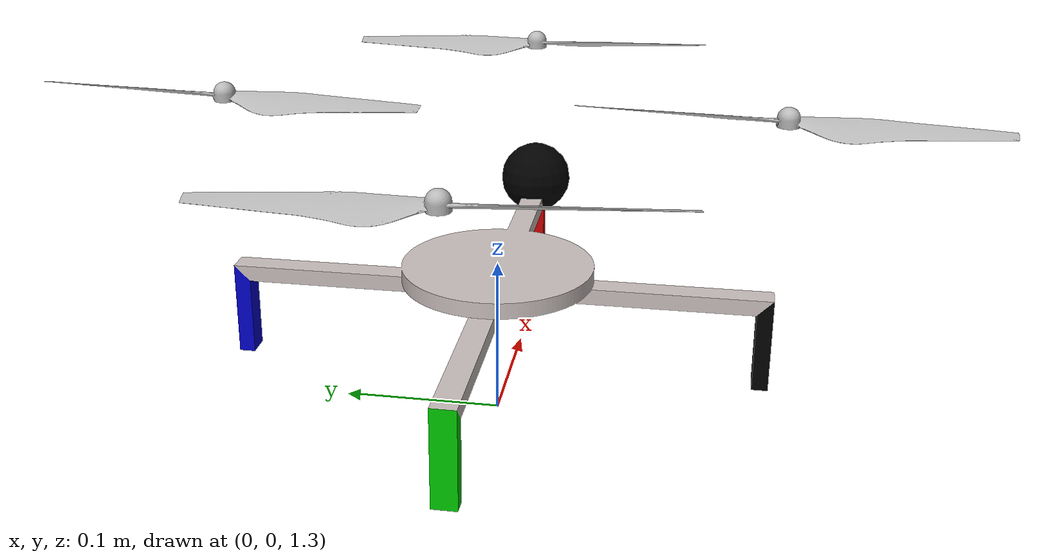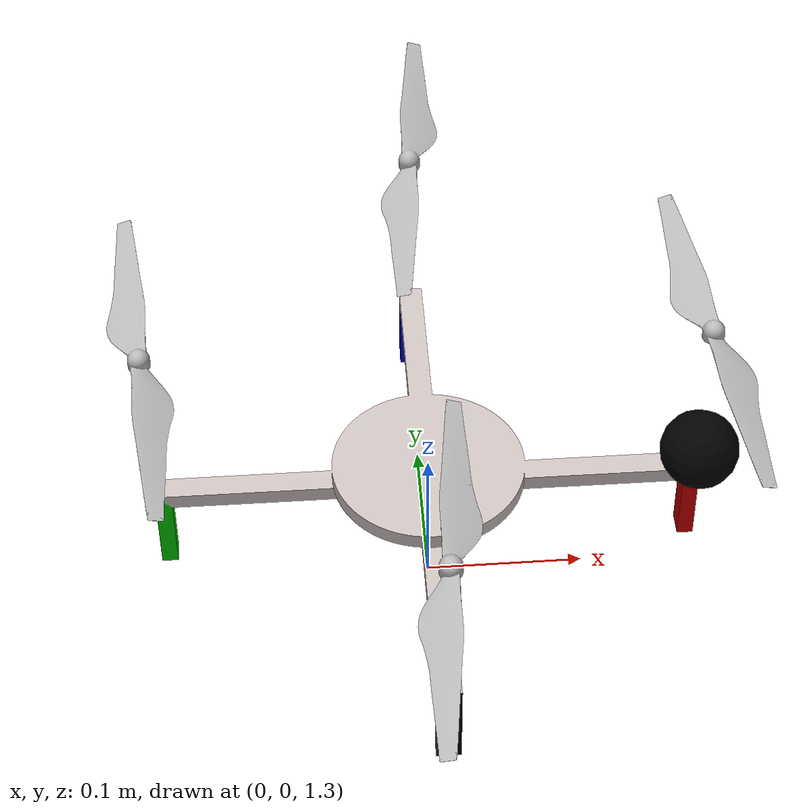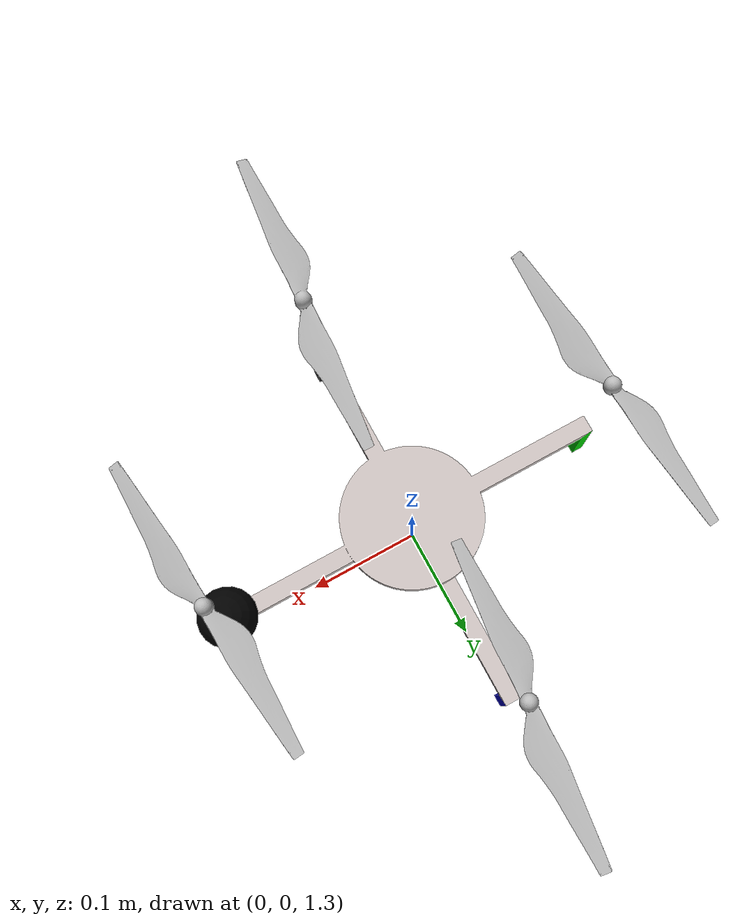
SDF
<sdf version='1.6'>
  <world name='default'>
  <include>
    <uri>model://ground_plane</uri>
  </include>
  <model name='quad01'>
    <static>1</static>
    <link name="quad01/base_link">
      <pose frame="">0 0 1.4 0 0 0</pose>
    </link>

    <joint name="quad01/led_joint" type="fixed">
      <parent>quad01/base_link</parent>
      <child>led_link</child>
    </joint>

    <link name="led_link">
    <pose>0.17 0 1.4 0 0 0</pose>
      <inertial>
        <mass>0.001</mass>  <!-- [kg] -->
        <inertia>
          <ixx>0</ixx>
          <ixy>0</ixy>
          <ixz>0</ixz>
          <iyy>0</iyy>
          <iyz>0</iyz>
          <izz>0</izz>
        </inertia>
      </inertial>
      <visual name="led">
        <geometry>
          <sphere>
            <radius>0.025</radius>
          </sphere>
        </geometry>
        <transparency>0</transparency>
        <material>
          <ambient>0 0 0 1</ambient>
          <diffuse>0 0 0 1</diffuse>
          <specular>0 0 0 1</specular>
          <emissive>0 1 0 1</emissive>
        </material>
      </visual>
      <light name="led" type="spot">
        <pose>0.05 0 0 0 1.57 0</pose>
        <attenuation>
          <range>10</range>
          <linear>1</linear>
          <constant>0.5</constant>
        </attenuation>
        <diffuse>0.5 1 1 1</diffuse>
        <specular>1 1 1 1</specular>
        <spot>
          <inner_angle>0.25</inner_angle>
          <outer_angle>0.3</outer_angle>
          <falloff>1</falloff>
        </spot>
        <direction>0 -1 0</direction>
      </light>
    </link>

    <plugin name='light_control' filename='libFlashLightPlugin.so'>
      <enable>true</enable>
      <light>
        <id>led_link/led</id>
        <duration>1</duration>
        <interval>0</interval>
        <color>0 1 0</color>
        <enable>true</enable>
      </light>
    </plugin>

    <joint name="quad01/base_joint" type="fixed">
      <parent>quad01/base_link</parent>
      <child>quad01/base_link_inertia</child>
    </joint>

    <link name="quad01/base_link_inertia">
      <inertial>
        <mass>0.68</mass>  <!-- [kg] -->
        <inertia>
          <ixx>0.007</ixx>
          <ixy>0</ixy>
          <ixz>0</ixz>
          <iyy>0.007</iyy>
          <iyz>0</iyz>
          <izz>0.012</izz>
        </inertia>
      </inertial>
      <visual name="base_link_visual">
        <pose>-0.17 -0.17 1.4 -1.57 0 0 </pose>
        <geometry>
          <mesh>
            <uri>model://rotors_description/meshes/bird01.dae</uri>
            <scale>0.001 0.001 0.001</scale>
          </mesh>
        </geometry>
      </visual>

      <collision name="baselink_col">
        <geometry>
          <box>
            <size>0.01 0.01 0.012</size>
          </box>
        </geometry>
      </collision>
    </link>

    <!-- attach multirotor_base_plugin to the base_link -->

      <plugin filename="librotors_gazebo_multirotor_base_plugin.so" name="multirotor_base_plugin">
        <linkName>quad01/base_link</linkName>
        <rotorVelocitySlowdownSim>10</rotorVelocitySlowdownSim>
      </plugin>

                            <!--Rotor joint and link-->
    <joint name="quad01/joint_rotor_0" type="velocity">
    <pose>0.17 0 1.5 0 0 0</pose>
      <parent>quad01/base_link</parent>
      <child>quad01/link_rotor_0</child>
    </joint>
    <link name="quad01/link_rotor_0">
      <inertial>
        <mass>0.009</mass>  <!-- [kg] -->
        <inertia>
          <ixx>0.000001</ixx>
          <ixy>0</ixy>
          <ixz>0</ixz>
          <iyy>0.00007</iyy>
          <iyz>0</iyz>
          <izz>0.00007</izz>
        </inertia>
      </inertial>
      <visual name="rotor_0_visual">
        <pose>0.17 0 1.5 0 0 0</pose>
        <geometry>
          <mesh>
            <uri>model://rotors_description/meshes/propeller_cw.dae</uri>
            <scale>0.1 0.1 0.1</scale>
          </mesh><!-- The propeller meshes have a radius of 1m -->
        </geometry>
      </visual>
      <collision name="rotor0_col">
        <geometry>
          <cylinder>
            <length>0.005</length>
            <radius>0.1</radius>
          </cylinder>
        </geometry>
      </collision>
    </link>
    <plugin name="quad01_motor_model_0" filename="librotors_gazebo_motor_model.so">
      <jointName>quad01/joint_rotor_0</jointName>
      <linkName>quad01/link_rotor_0</linkName>
      <turningDirection>cw</turningDirection>
      <timeConstantUp>0.0125</timeConstantUp>
      <timeConstantDown>0.025</timeConstantDown>
      <maxRotVelocity>838</maxRotVelocity>
      <motorConstant>8.54858e-06</motorConstant>
      <momentConstant>0.016</momentConstant>
      <commandSubTopic>gazebo/command/motor_speed</commandSubTopic>
      <motorNumber>0</motorNumber>
      <rotorDragCoefficient>8.06428e-05</rotorDragCoefficient>
      <rollingMomentCoefficient>0.000001</rollingMomentCoefficient>
      <motorSpeedPubTopic>motor_speed/0</motorSpeedPubTopic>
      <rotorVelocitySlowdownSim>10</rotorVelocitySlowdownSim>
    </plugin>

    <joint name="quad01/joint_rotor_1" type="velocity">
    <pose>0 0.17 1.5 0 0 0</pose>
      <parent>quad01/base_link</parent>
      <child>quad01/link_rotor_1</child>
    </joint>
    <link name="quad01/link_rotor_1">
      <inertial>
        <mass>0.009</mass>  <!-- [kg] -->
        <inertia>
          <ixx>0.000001</ixx>
          <ixy>0</ixy>
          <ixz>0</ixz>
          <iyy>0.00007</iyy>
          <iyz>0</iyz>
          <izz>0.00007</izz>
        </inertia>
      </inertial>
      <visual name="rotor_1_visual">
        <pose>0 0.17 1.5 0 0 0</pose>
        <geometry>
          <mesh>
            <uri>model://rotors_description/meshes/propeller_ccw.dae</uri>
            <scale>0.1 0.1 0.1</scale>
          </mesh><!-- The propeller meshes have a radius of 1m -->
        </geometry>
      </visual>
      <collision name="rotor1_col">
        <geometry>
          <cylinder>
            <length>0.005</length>
            <radius>0.1</radius>
          </cylinder>
        </geometry>
      </collision>
    </link>
    <plugin name="quad01_motor_model_1" filename="librotors_gazebo_motor_model.so">
      <jointName>quad01/joint_rotor_1</jointName>
      <linkName>quad01/link_rotor_1</linkName>
      <turningDirection>ccw</turningDirection>
      <timeConstantUp>0.0125</timeConstantUp>
      <timeConstantDown>0.025</timeConstantDown>
      <maxRotVelocity>838</maxRotVelocity>
      <motorConstant>8.54858e-06</motorConstant>
      <momentConstant>0.016</momentConstant>
      <commandSubTopic>gazebo/command/motor_speed</commandSubTopic>
      <motorNumber>1</motorNumber>
      <rotorDragCoefficient>8.06428e-05</rotorDragCoefficient>
      <rollingMomentCoefficient>0.000001</rollingMomentCoefficient>
      <motorSpeedPubTopic>motor_speed/1</motorSpeedPubTopic>
      <rotorVelocitySlowdownSim>10</rotorVelocitySlowdownSim>
    </plugin>

    <joint name="quad01/joint_rotor_2" type="velocity">
    <pose>-0.17 0 1.5 0 0 0</pose>
      <parent>quad01/base_link</parent>
      <child>quad01/link_rotor_2</child>
    </joint>
    <link name="quad01/link_rotor_2">
      <inertial>
        <mass>0.009</mass>  <!-- [kg] -->
        <inertia>
          <ixx>0.000001</ixx>
          <ixy>0</ixy>
          <ixz>0</ixz>
          <iyy>0.00007</iyy>
          <iyz>0</iyz>
          <izz>0.00007</izz>
        </inertia>
      </inertial>
      <visual name="rotor_2_visual">
        <pose>-0.17 0 1.5 0 0 0</pose>
        <geometry>
          <mesh>
            <uri>model://rotors_description/meshes/propeller_cw.dae</uri>
            <scale>0.1 0.1 0.1</scale>
          </mesh><!-- The propeller meshes have a radius of 1m -->
        </geometry>
      </visual>
      <collision name="rotor2_col">
        <geometry>
          <cylinder>
            <length>0.005</length>
            <radius>0.1</radius>
          </cylinder>
        </geometry>
      </collision>
    </link>
    <plugin name="quad01_motor_model_2" filename="librotors_gazebo_motor_model.so">
      <jointName>quad01/joint_rotor_2</jointName>
      <linkName>quad01/link_rotor_2</linkName>
      <turningDirection>cw</turningDirection>
      <timeConstantUp>0.0125</timeConstantUp>
      <timeConstantDown>0.025</timeConstantDown>
      <maxRotVelocity>838</maxRotVelocity>
      <motorConstant>8.54858e-06</motorConstant>
      <momentConstant>0.016</momentConstant>
      <commandSubTopic>gazebo/command/motor_speed</commandSubTopic>
      <motorNumber>2</motorNumber>
      <rotorDragCoefficient>8.06428e-05</rotorDragCoefficient>
      <rollingMomentCoefficient>0.000001</rollingMomentCoefficient>
      <motorSpeedPubTopic>motor_speed/2</motorSpeedPubTopic>
      <rotorVelocitySlowdownSim>10</rotorVelocitySlowdownSim>
    </plugin>

    <joint name="quad01/joint_rotor_3" type="velocity">
      <pose>0 -0.17 1.5 0 0 0</pose>
      <parent>quad01/base_link</parent>
      <child>quad01/link_rotor_3</child>
    </joint>
    <link name="quad01/link_rotor_3">
      <inertial>
        <mass>0.009</mass>  <!-- [kg] -->
        <inertia>
          <ixx>0.000001</ixx>
          <ixy>0</ixy>
          <ixz>0</ixz>
          <iyy>0.00007</iyy>
          <iyz>0</iyz>
          <izz>0.00007</izz>
        </inertia>
      </inertial>
      <visual name="rotor_3_visual">
        <pose>0 -0.17 1.5 0 0 0</pose>
        <geometry>
          <mesh>
            <uri>model://rotors_description/meshes/propeller_ccw.dae</uri>
            <scale>0.1 0.1 0.1</scale>
          </mesh><!-- The propeller meshes have a radius of 1m -->
        </geometry>
      </visual>
      <collision name="rotor3_col">
        <geometry>
          <cylinder>
            <length>0.005</length>
            <radius>0.1</radius>
          </cylinder>
        </geometry>
      </collision>
    </link>
    <plugin name="quad01_motor_model_3" filename="librotors_gazebo_motor_model.so">
      <jointName>quad01/joint_rotor_3</jointName>
      <linkName>quad01/link_rotor_3</linkName>
      <turningDirection>ccw</turningDirection>
      <timeConstantUp>0.0125</timeConstantUp>
      <timeConstantDown>0.025</timeConstantDown>
      <maxRotVelocity>838</maxRotVelocity>
      <motorConstant>8.54858e-06</motorConstant>
      <momentConstant>0.016</momentConstant>
      <commandSubTopic>gazebo/command/motor_speed</commandSubTopic>
      <motorNumber>3</motorNumber>
      <rotorDragCoefficient>8.06428e-05</rotorDragCoefficient>
      <rollingMomentCoefficient>0.000001</rollingMomentCoefficient>
      <motorSpeedPubTopic>motor_speed/3</motorSpeedPubTopic>
      <rotorVelocitySlowdownSim>10</rotorVelocitySlowdownSim>
    </plugin>

  </model>
  </world>
</sdf>
